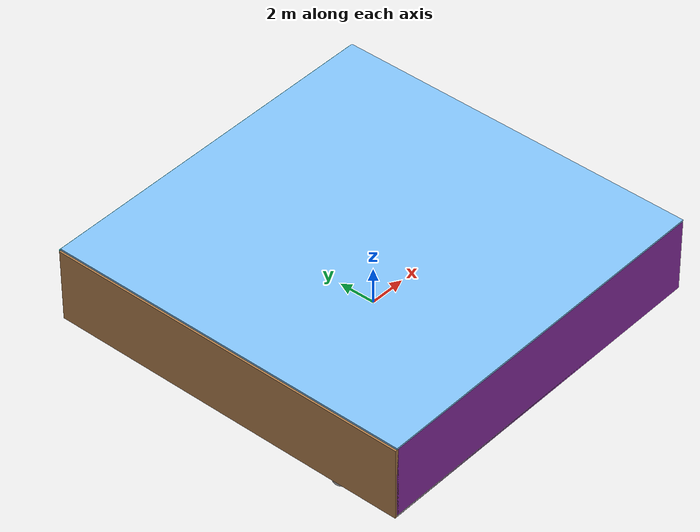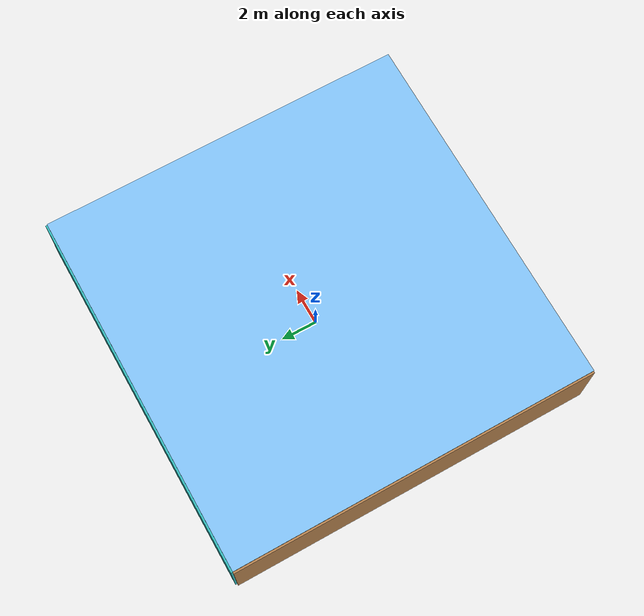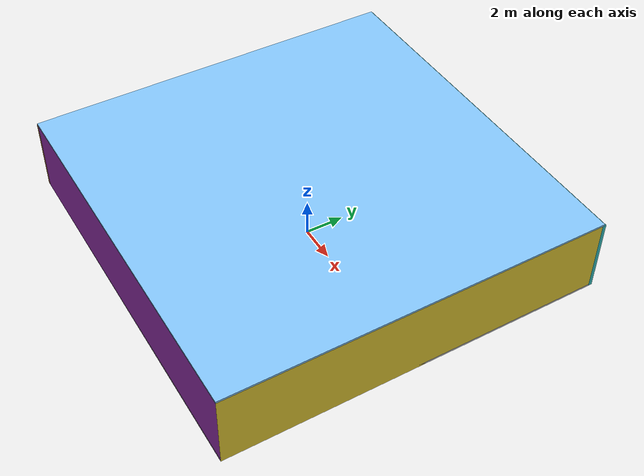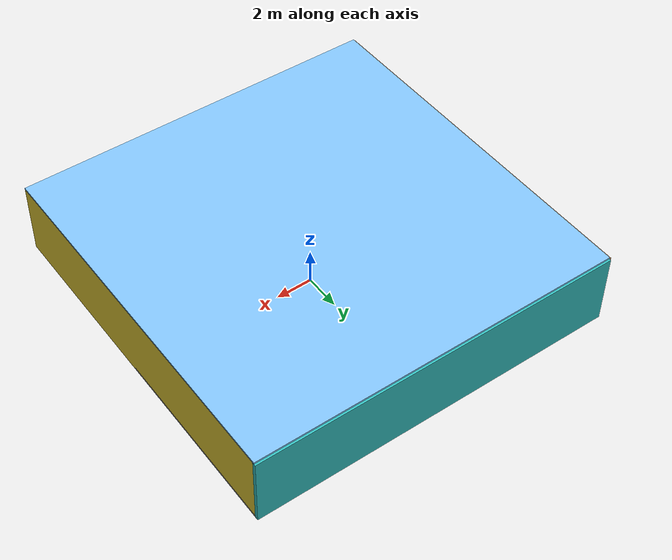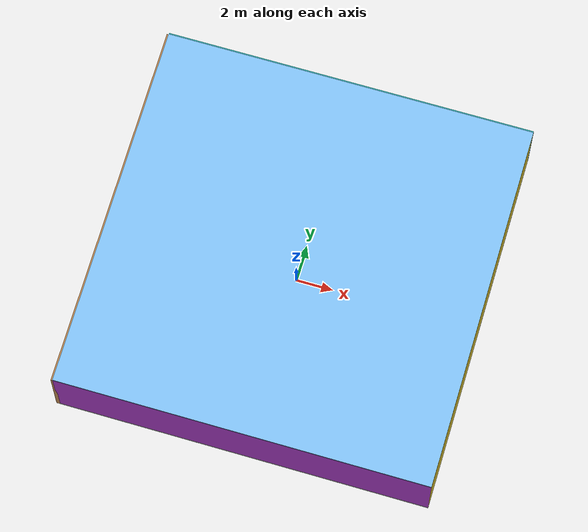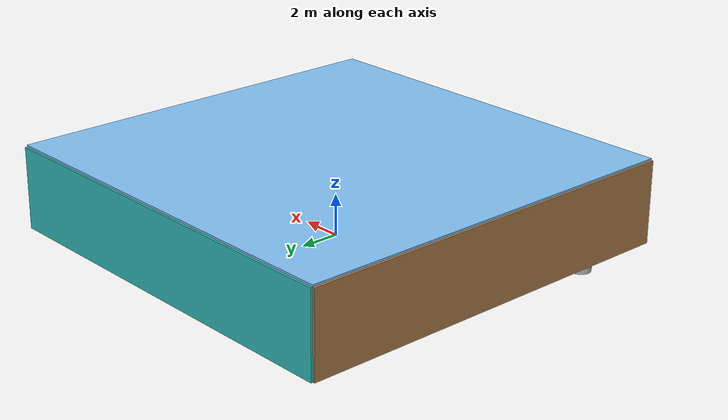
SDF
<sdf version="1.4">
 <world name="default">
  <physics type="ode">
   <max_step_size>0.001</max_step_size>
   <real_time_factor>1</real_time_factor>
   <real_time_update_rate>1000</real_time_update_rate>
   <gravity>0 0 -9.8</gravity>
  </physics>
  <scene><ambient>0.4 0.4 0.4 1</ambient><background>0.7 0.7 0.7 1</background><shadows>1</shadows></scene>
  <model name="Surrounding">
   <static>1</static>
   <link name="Ceiling">
    <collision name="Ceiling_Collision"><geometry><box><size>20 20 0.1</size></box></geometry></collision>
    <visual name="Ceiling_Visual">
     <geometry><box><size>20 20 0.1</size></box></geometry>
     <material>
      <script><uri>file://media/materials/scripts/gazebo.material</uri><name>Gazebo/SkyBlue</name></script>
     </material>
    </visual>
    <pose>0 0 4.05 0 0 0</pose>
   </link>
   <link name="Wall_South">
    <collision name="Wall_South_Collision">
     <geometry><box><size>20 0 4</size></box></geometry>
     <pose>0 0 2 0 -0 0</pose>
    </collision>
    <visual name="Wall_South_Visual">
     <pose>0 0 2 0 -0 0</pose>
     <geometry><box><size>20 0 4</size></box></geometry>
     <material>
      <script><uri>file://media/materials/scripts/gazebo.material</uri><name>Gazebo/PurpleGlow</name></script>
     </material>
    </visual>
    <velocity_decay><linear>0</linear><angular>0</angular></velocity_decay>
    <pose>0 -10 0 0 -0 0</pose>
   </link>
   <link name="Wall_East">
    <collision name="Wall_21_Collision">
     <geometry><box><size>20 0 4</size></box></geometry>
     <pose>0 0 2 0 -0 0</pose>
    </collision>
    <visual name="Wall_21_Visual">
     <pose>0 0 2 0 -0 0</pose>
     <geometry><box><size>20 0 4</size></box></geometry>
     <material>
      <script><uri>file://media/materials/scripts/gazebo.material</uri><name>Gazebo/ZincYellow</name></script>
     </material>
    </visual>
    <velocity_decay><linear>0</linear><angular>0</angular></velocity_decay>
    <pose>10 0 0 0 -0 1.5708</pose>
   </link>
   <link name="Wall_North">
    <collision name="Wall_22_Collision">
     <geometry><box><size>20 0.2 4</size></box></geometry>
     <pose>0 0 2 0 -0 0</pose>
    </collision>
    <visual name="Wall_22_Visual">
     <pose>0 0 2 0 -0 0</pose>
     <geometry><box><size>20 0.2 4</size></box></geometry>
     <material>
      <script><uri>file://media/materials/scripts/gazebo.material</uri><name>Gazebo/TurquoiseGlow</name></script>
     </material>
    </visual>
    <velocity_decay><linear>0</linear><angular>0</angular></velocity_decay>
    <pose>0 10 0 0 -0 0</pose>
   </link>
   <link name="Wall_West">
    <collision name="Wall_23_Collision">
     <geometry><box><size>20 0.2 4</size></box></geometry>
     <pose>0 0 2 0 -0 0</pose>
    </collision>
    <visual name="Wall_23_Visual">
     <pose>0 0 2 0 -0 0</pose>
     <geometry><box><size>20 0.2 4</size></box></geometry>
     <material>
      <script><uri>file://media/materials/scripts/gazebo.material</uri><name>Gazebo/WoodFloor</name></script>
     </material>
    </visual>
    <velocity_decay><linear>0</linear><angular>0</angular></velocity_decay>
    <pose>-10 0 0 0 0 -1.5708</pose>
   </link>
   <link name="Ground_link">
    <collision name="collision">
     <pose>0 0 .05 0 -0 0</pose>
     <geometry><box><size>20 20 0.1</size></box></geometry>
    </collision>
    <visual name="visual">
     <pose>0 0 .05 0 -0 0</pose>
     <geometry><box><size>20 20 0.1</size></box></geometry>
     <material>
      <script><uri>file://media/materials/scripts/gazebo.material</uri><name>Gazebo/LightOn</name></script>
     </material>
    </visual>
   </link>
   <static>1</static>
  </model>
  <spherical_coordinates>
   <surface_model>EARTH_WGS84</surface_model>
   <latitude_deg>0</latitude_deg>
   <longitude_deg>0</longitude_deg>
   <elevation>0</elevation>
   <heading_deg>0</heading_deg>
  </spherical_coordinates>
  <light name="lightball_0" type="diffuse">
   <diffuse>0.8 0.8 0.8 1</diffuse>
   <specular>0.2 0.2 0.2 1</specular>
   <attenuation>
    <range>100</range>
    <constant>0.7</constant>
    <linear>0.01</linear>
    <quadratic>0.001</quadratic>
   </attenuation>
   <direction>-0.5 0.1 -0.9</direction>
   <pose>-0.444765215822 -2.34805276529 1.41443989566 0 0 0</pose>
  </light>
  <light name="lightball_1" type="diffuse">
   <diffuse>0.8 0.8 0.8 1</diffuse>
   <specular>0.2 0.2 0.2 1</specular>
   <attenuation>
    <range>100</range>
    <constant>0.7</constant>
    <linear>0.01</linear>
    <quadratic>0.001</quadratic>
   </attenuation>
   <direction>-0.5 0.1 -0.9</direction>
   <pose>-6.82257789477 -7.9147633047 2.26568934802 0 0 0</pose>
  </light>
  <light name="lightball_2" type="diffuse">
   <diffuse>0.8 0.8 0.8 1</diffuse>
   <specular>0.2 0.2 0.2 1</specular>
   <attenuation>
    <range>100</range>
    <constant>0.7</constant>
    <linear>0.01</linear>
    <quadratic>0.001</quadratic>
   </attenuation>
   <direction>-0.5 0.1 -0.9</direction>
   <pose>8.31924896127 1.75844058528 0.98672748169 0 0 0</pose>
  </light>
  <light name="lightball_3" type="diffuse">
   <diffuse>0.8 0.8 0.8 1</diffuse>
   <specular>0.2 0.2 0.2 1</specular>
   <attenuation>
    <range>100</range>
    <constant>0.7</constant>
    <linear>0.01</linear>
    <quadratic>0.001</quadratic>
   </attenuation>
   <direction>-0.5 0.1 -0.9</direction>
   <pose>1.33868730597 -4.57648369781 3.60411889147 0 0 0</pose>
  </light>
  <light name="lightball_4" type="diffuse">
   <diffuse>0.8 0.8 0.8 1</diffuse>
   <specular>0.2 0.2 0.2 1</specular>
   <attenuation>
    <range>100</range>
    <constant>0.7</constant>
    <linear>0.01</linear>
    <quadratic>0.001</quadratic>
   </attenuation>
   <direction>-0.5 0.1 -0.9</direction>
   <pose>0.567828789639 5.4149308369 1.09533589171 0 0 0</pose>
  </light>
  <light name="lightball_5" type="diffuse">
   <diffuse>0.8 0.8 0.8 1</diffuse>
   <specular>0.2 0.2 0.2 1</specular>
   <attenuation>
    <range>100</range>
    <constant>0.7</constant>
    <linear>0.01</linear>
    <quadratic>0.001</quadratic>
   </attenuation>
   <direction>-0.5 0.1 -0.9</direction>
   <pose>-3.22568892453 -2.51819978263 3.81763664094 0 0 0</pose>
  </light>
  <light name="lightball_6" type="diffuse">
   <diffuse>0.8 0.8 0.8 1</diffuse>
   <specular>0.2 0.2 0.2 1</specular>
   <attenuation>
    <range>100</range>
    <constant>0.7</constant>
    <linear>0.01</linear>
    <quadratic>0.001</quadratic>
   </attenuation>
   <direction>-0.5 0.1 -0.9</direction>
   <pose>8.68072320455 -0.526986368648 1.83489112731 0 0 0</pose>
  </light>
  <light name="lightball_7" type="diffuse">
   <diffuse>0.8 0.8 0.8 1</diffuse>
   <specular>0.2 0.2 0.2 1</specular>
   <attenuation>
    <range>100</range>
    <constant>0.7</constant>
    <linear>0.01</linear>
    <quadratic>0.001</quadratic>
   </attenuation>
   <direction>-0.5 0.1 -0.9</direction>
   <pose>1.42278557822 -2.0374773249 3.48734956813 0 0 0</pose>
  </light>
  <light name="lightball_8" type="diffuse">
   <diffuse>0.8 0.8 0.8 1</diffuse>
   <specular>0.2 0.2 0.2 1</specular>
   <attenuation>
    <range>100</range>
    <constant>0.7</constant>
    <linear>0.01</linear>
    <quadratic>0.001</quadratic>
   </attenuation>
   <direction>-0.5 0.1 -0.9</direction>
   <pose>-0.919423256078 7.57164453549 3.68534906978 0 0 0</pose>
  </light>
  <include>
   <uri>model://textured_shapes</uri>
   <pose>-8.21753023234 -7.33762140839 0 0 0 0.823585678669</pose>
  </include>
  <include>
   <uri>model://robocup_3Dsim_goal</uri>
   <pose>-4.88458384037 -1.981645411 0 0 0 1.63239393272</pose>
  </include>
  <include><uri>model://table</uri><pose>-4.01018173993 2.02873491562 0 0 0 0.0960622885878</pose></include>
  <include><uri>model://table</uri><pose>-1.40094327321 -4.8019304908 0 0 0 1.85116413873</pose></include>
  <include><uri>model://cabinet</uri><pose>-2.00796592872 4.6408644923 0 0 0 0.076078207543</pose></include>
  <include>
   <uri>model://robocup_3Dsim_goal</uri>
   <pose>4.70585977613 -6.89270336956 0 0 0 1.7332790598</pose>
  </include>
  <include><uri>model://cabinet</uri><pose>4.97051647641 -5.25727574684 0 0 0 0.900141454929</pose></include>
  <include><uri>model://cabinet</uri><pose>4.04716056201 -1.98091632912 0 0 0 0.393607339531</pose></include>
  <include><uri>model://cabinet</uri><pose>4.89519085326 7.25834954532 0 0 0 1.30783279244</pose></include>
  <include>
   <uri>model://construction_cone</uri>
   <pose>7.75939182196 -1.83122843103 0 0 0 2.32399866914</pose>
  </include>
  <include><uri>model://cabinet</uri><pose>6.92278509707 7.96761161536 0 0 0 0.160844601179</pose></include>
 </world>
</sdf>

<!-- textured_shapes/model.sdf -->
<sdf version="1.6">
  <model name="textured_shapes">
    <pose>0 0 0.5 0 0 0</pose>
    <link name="box">
      <pose>0 -1.5 0 0 0 0</pose>
      <collision name="collision">
        <geometry>
          <box>
            <size>1 1 1</size>
          </box>
        </geometry>
      </collision>
      <visual name="visual">
        <geometry>
          <box>
            <size>1 1 1</size>
          </box>
        </geometry>
        <material>
          <script>
            <uri>model://../model_source/models/textured_shapes/materials/scripts</uri>
            <uri>model://../model_source/models/textured_shapes/materials/textures</uri>
            <name>TexturedShape/Squares</name>
          </script>
        </material>
      </visual>
    </link>
    <link name="sphere">
      <collision name="collision">
        <geometry>
          <sphere>
            <radius>0.5</radius>
          </sphere>
        </geometry>
      </collision>
      <visual name="visual">
        <geometry>
          <sphere>
            <radius>0.5</radius>
          </sphere>
        </geometry>
        <material>
          <script>
            <uri>model://../model_source/models/textured_shapes/materials/scripts</uri>
            <uri>model://../model_source/models/textured_shapes/materials/textures</uri>
            <name>TexturedShape/Squares</name>
          </script>
        </material>
      </visual>
    </link>
    <link name="cylinder">
      <pose>0 1.5 0 0 0 0</pose>
      <collision name="collision">
        <geometry>
          <cylinder>
            <radius>0.5</radius>
            <length>1</length>
          </cylinder>
        </geometry>
      </collision>
      <visual name="visual">
        <geometry>
          <cylinder>
            <radius>0.5</radius>
            <length>1</length>
          </cylinder>
        </geometry>
        <material>
          <script>
            <uri>model://../model_source/models/textured_shapes/materials/scripts</uri>
            <uri>model://../model_source/models/textured_shapes/materials/textures</uri>
            <name>TexturedShape/Squares</name>
          </script>
        </material>
      </visual>
    </link>
  </model>
</sdf>

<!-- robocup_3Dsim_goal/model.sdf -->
<sdf version="1.5">
  <model name="robocup_3d_goal">
    <static>true</static>
    <link name="left_post">
      <pose>0 1.05 0.45 0 0 0</pose>
      <collision name="collision">
        <geometry>
          <cylinder>
            <radius>0.05</radius>
            <length>0.9</length>
          </cylinder>
        </geometry>
      </collision>
      <visual name="visual">
        <geometry>
          <cylinder>
            <radius>0.05</radius>
            <length>0.9</length>
          </cylinder>
        </geometry>
        <material>
          <script>
            <uri>file://media/materials/scripts/gazebo.material</uri>
            <name>Gazebo/ZincYellow</name>
          </script>
        </material>
      </visual>
    </link>
    <link name="left_support_horiz_lower">
      <pose>0.30 1.05 0.01 0 0 0</pose>
      <collision name="collision">
        <geometry>
          <box>
            <size>0.50 0.02 0.02</size>
          </box>
        </geometry>
      </collision>
      <visual name="visual">
        <geometry>
          <box>
            <size>0.50 0.02 0.02</size>
          </box>
        </geometry>
        <material>
          <script>
            <uri>file://media/materials/scripts/gazebo.material</uri>
            <name>Gazebo/White</name>
          </script>
        </material>
      </visual>
    </link>
    <link name="left_support_horiz_upper">
      <pose>0.30 1.05 0.79 0 0 0</pose>
      <collision name="collision">
        <geometry>
          <box>
            <size>0.50 0.02 0.02</size>
          </box>
        </geometry>
      </collision>
      <visual name="visual">
        <geometry>
          <box>
            <size>0.50 0.02 0.02</size>
          </box>
        </geometry>
        <material>
          <script>
            <uri>file://media/materials/scripts/gazebo.material</uri>
            <name>Gazebo/White</name>
          </script>
        </material>
      </visual>
    </link>
    <link name="left_support_vertical">
      <pose>0.56 1.05 0.4 0 1.5708 0</pose>
      <collision name="collision">
        <geometry>
          <box>
            <size>0.80 0.02 0.02</size>
          </box>
        </geometry>
      </collision>
      <visual name="visual">
        <geometry>
          <box>
            <size>0.80 0.02 0.02</size>
          </box>
        </geometry>
        <material>
          <script>
            <uri>file://media/materials/scripts/gazebo.material</uri>
            <name>Gazebo/White</name>
          </script>
        </material>
      </visual>
    </link>
    <link name="right_support_horiz_lower">
      <pose>0.30 -1.05 0.01 0 0 0</pose>
      <collision name="collision">
        <geometry>
          <box>
            <size>0.50 0.02 0.02</size>
          </box>
        </geometry>
      </collision>
      <visual name="visual">
        <geometry>
          <box>
            <size>0.50 0.02 0.02</size>
          </box>
        </geometry>
        <material>
          <script>
            <uri>file://media/materials/scripts/gazebo.material</uri>
            <name>Gazebo/White</name>
          </script>
        </material>
      </visual>
    </link>
    <link name="right_support_horiz_upper">
      <pose>0.30 -1.05 0.79 0 0 0</pose>
      <collision name="collision">
        <geometry>
          <box>
            <size>0.50 0.02 0.02</size>
          </box>
        </geometry>
      </collision>
      <visual name="visual">
        <geometry>
          <box>
            <size>0.50 0.02 0.02</size>
          </box>
        </geometry>
        <material>
          <script>
            <uri>file://media/materials/scripts/gazebo.material</uri>
            <name>Gazebo/White</name>
          </script>
        </material>
      </visual>
    </link>
    <link name="right_support_vertical">
      <pose>0.56 -1.05 0.4 0 1.5708 0</pose>
      <collision name="collision">
        <geometry>
          <box>
            <size>0.80 0.02 0.02</size>
          </box>
        </geometry>
      </collision>
      <visual name="visual">
        <geometry>
          <box>
            <size>0.80 0.02 0.02</size>
          </box>
        </geometry>
        <material>
          <script>
            <uri>file://media/materials/scripts/gazebo.material</uri>
            <name>Gazebo/White</name>
          </script>
        </material>
      </visual>
    </link>
    <link name="center_support_horiz_lower">
      <pose>0.56 0 0.01 0 1.5708 0</pose>
      <collision name="collision">
        <geometry>
          <box>
            <size>0.02 2.08 0.02</size>
          </box>
        </geometry>
      </collision>
      <visual name="visual">
        <geometry>
          <box>
            <size>0.02 2.08 0.02</size>
          </box>
        </geometry>
        <material>
          <script>
            <uri>file://media/materials/scripts/gazebo.material</uri>
            <name>Gazebo/White</name>
          </script>
        </material>
      </visual>
    </link>
    <link name="center_support_horiz_upper">
      <pose>0.56 0 0.79 0 1.5708 0</pose>
      <collision name="collision">
        <geometry>
          <box>
            <size>0.02 2.08 0.02</size>
          </box>
        </geometry>
      </collision>
      <visual name="visual">
        <geometry>
          <box>
            <size>0.02 2.08 0.02</size>
          </box>
        </geometry>
        <material>
          <script>
            <uri>file://media/materials/scripts/gazebo.material</uri>
            <name>Gazebo/White</name>
          </script>
        </material>
      </visual>
    </link>
    <link name="right_post">
      <pose>0 -1.05 0.45 0 0 0</pose>
      <collision name="collision">
        <geometry>
          <cylinder>
            <radius>0.05</radius>
            <length>0.9</length>
          </cylinder>
        </geometry>
      </collision>
      <visual name="visual">
        <geometry>
          <cylinder>
            <radius>0.05</radius>
            <length>0.9</length>
          </cylinder>
        </geometry>
        <material>
          <script>
            <uri>file://media/materials/scripts/gazebo.material</uri>
            <name>Gazebo/ZincYellow</name>
          </script>
        </material>
      </visual>
    </link>
    <link name="crossbar">
      <pose>0 0 0.85 1.57 1.57 0</pose>
      <collision name="collision">
        <geometry>
          <cylinder>
            <radius>0.05</radius>
            <length>2.0</length>
          </cylinder>
        </geometry>
      </collision>
      <visual name="visual">
        <geometry>
          <cylinder>
            <radius>0.05</radius>
            <length>2.0</length>
          </cylinder>
        </geometry>
        <material>
          <script>
            <uri>file://media/materials/scripts/gazebo.material</uri>
            <name>Gazebo/ZincYellow</name>
          </script>
        </material>
      </visual>
    </link>
    <link name="center_net">
      <pose>0.56 0 0.40 0 0 0</pose>
      <collision name="collision">
        <geometry>
          <box>
            <size>0.01 2.1 0.80</size>
          </box>
        </geometry>
      </collision>
      <visual name="visual">
        <geometry>
          <box>
            <size>0.01 2.1 0.80</size>
          </box>
        </geometry>
        <material>
          <script>
            <uri>model://../model_source/models/robocup09_spl_field/materials/scripts/</uri>
            <uri>model://../model_source/models/robocup09_spl_field/materials/textures/</uri>
            <name>RoboCup/Net</name>
          </script>
        </material>
      </visual>
    </link>
    <link name="left_net">
      <pose>0.30 1.05 0.40 0 0 0</pose>
      <collision name="collision">
        <geometry>
          <box>
            <size>0.50 0.01 0.76</size>
          </box>
        </geometry>
      </collision>
      <visual name="visual">
        <geometry>
          <box>
            <size>0.50 0.01 0.76</size>
          </box>
        </geometry>
        <material>
          <script>
            <uri>model://../model_source/models/robocup09_spl_field/materials/scripts/</uri>
            <uri>model://../model_source/models/robocup09_spl_field/materials/textures/</uri>
            <name>RoboCup/Net</name>
          </script>
        </material>
      </visual>
    </link>
    <link name="right_net">
      <pose>0.30 -1.05 0.40 0 0 0</pose>
      <collision name="collision">
        <geometry>
          <box>
            <size>0.50 0.01 0.76</size>
          </box>
        </geometry>
      </collision>
      <visual name="visual">
        <geometry>
          <box>
            <size>0.50 0.01 0.76</size>
          </box>
        </geometry>
        <material>
          <script>
            <uri>model://../model_source/models/robocup09_spl_field/materials/scripts/</uri>
            <uri>model://../model_source/models/robocup09_spl_field/materials/textures/</uri>
            <name>RoboCup/Net</name>
          </script>
        </material>
      </visual>
    </link>
  </model>
</sdf>

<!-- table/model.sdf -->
<sdf version="1.5">
  <model name="table">
    <static>true</static>
    <link name="link">
      <collision name="surface">
        <pose>0 0 1.0 0 0 0</pose>
        <geometry>
          <box>
            <size>1.5 0.8 0.03</size>
          </box>
        </geometry>
        <surface>
          <friction>
            <ode>
              <mu>0.6</mu>
              <mu2>0.6</mu2>
            </ode>
          </friction>
        </surface>
      </collision>
      <visual name="visual1">
        <pose>0 0 1.0 0 0 0</pose>
        <geometry>
          <box>
            <size>1.5 0.8 0.03</size>
          </box>
        </geometry>
        <material>
          <script>
            <uri>model://media/materials/scripts/gazebo.material</uri>
            <name>Gazebo/Wood</name>
          </script>
        </material>
      </visual>
      <collision name="front_left_leg">
        <pose>0.68 0.38 0.5 0 0 0</pose>
        <geometry>
          <cylinder>
            <radius>0.02</radius>
            <length>1.0</length>
          </cylinder>
        </geometry>
      </collision>
      <visual name="front_left_leg">
        <pose>0.68 0.38 0.5 0 0 0</pose>
        <geometry>
          <cylinder>
            <radius>0.02</radius>
            <length>1.0</length>
          </cylinder>
        </geometry>
        <material>
          <script>
            <uri>model://media/materials/scripts/gazebo.material</uri>
            <name>Gazebo/Grey</name>
          </script>
        </material>
      </visual>
      <collision name="front_right_leg">
        <pose>0.68 -0.38 0.5 0 0 0</pose>
        <geometry>
          <cylinder>
            <radius>0.02</radius>
            <length>1.0</length>
          </cylinder>
        </geometry>
      </collision>
      <visual name="front_right_leg">
        <pose>0.68 -0.38 0.5 0 0 0</pose>
        <geometry>
          <cylinder>
            <radius>0.02</radius>
            <length>1.0</length>
          </cylinder>
        </geometry>
        <material>
          <script>
            <uri>model://media/materials/scripts/gazebo.material</uri>
            <name>Gazebo/Grey</name>
          </script>
        </material>
      </visual>
      <collision name="back_right_leg">
        <pose>-0.68 -0.38 0.5 0 0 0</pose>
        <geometry>
          <cylinder>
            <radius>0.02</radius>
            <length>1.0</length>
          </cylinder>
        </geometry>
      </collision>
      <visual name="back_right_leg">
        <pose>-0.68 -0.38 0.5 0 0 0</pose>
        <geometry>
          <cylinder>
            <radius>0.02</radius>
            <length>1.0</length>
          </cylinder>
        </geometry>
        <material>
          <script>
            <uri>model://media/materials/scripts/gazebo.material</uri>
            <name>Gazebo/Grey</name>
          </script>
        </material>
      </visual>
      <collision name="back_left_leg">
        <pose>-0.68 0.38 0.5 0 0 0</pose>
        <geometry>
          <cylinder>
            <radius>0.02</radius>
            <length>1.0</length>
          </cylinder>
        </geometry>
      </collision>
      <visual name="back_left_leg">
        <pose>-0.68 0.38 0.5 0 0 0</pose>
        <geometry>
          <cylinder>
            <radius>0.02</radius>
            <length>1.0</length>
          </cylinder>
        </geometry>
        <material>
          <script>
            <uri>model://media/materials/scripts/gazebo.material</uri>
            <name>Gazebo/Grey</name>
          </script>
        </material>
      </visual>
    </link>
  </model>
</sdf>

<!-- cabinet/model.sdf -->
<sdf version="1.5">
  <model name="cabinet">
    <static>true</static>
    <link name="cabinet_bottom_plate">
      <inertial>
        <pose>0 0 -1 0 0 0</pose>
        <inertia>
          <ixx>2.050000</ixx>
          <ixy>0</ixy>
          <ixz>0</ixz>
          <iyy>2.050000</iyy>
          <iyz>0</iyz>
          <izz>2.050000</izz>
        </inertia>
        <mass>25.000000</mass>
      </inertial>
      <collision name="cabinet_bottom_plate_geom">
        <pose>0 0 0.010000 0 0 0</pose>
        <geometry>
          <box>
            <size>0.450000 0.450000 0.020000</size>
          </box>
        </geometry>
      </collision>
      <visual name="cabinet_bottom_plate_geom_visual">
        <pose>0 0 0.010000 0 0 0</pose>
        <geometry>
          <box>
            <size>0.450000 0.450000 0.020000</size>
          </box>
        </geometry>
        <material>
          <script>
            <uri>model://media/materials/scripts/gazebo.material</uri>
            <name>Gazebo/Wood</name>
          </script>
        </material>
      </visual>
      <collision name="cabinet_bottom_plate_geom_cabinet_back_plate">
        <pose>0.235000 0 0.510000 0 0 0</pose>
        <geometry>
          <box>
            <size>0.020000 0.450000 1.020000</size>
          </box>
        </geometry>
      </collision>
      <visual name="cabinet_bottom_plate_geom_cabinet_back_plate_visual">
        <pose>0.235000 0 0.510000 0 0 0</pose>
        <geometry>
          <box>
            <size>0.020000 0.450000 1.020000</size>
          </box>
        </geometry>
        <material>
          <script>
            <uri>model://media/materials/scripts/gazebo.material</uri>
            <name>Gazebo/Wood</name>
          </script>
        </material>
      </visual>
      <collision name="cabinet_bottom_plate_geom_cabinet_left_plate">
        <pose>0 0.235000 0.510000 0 0 0</pose>
        <geometry>
          <box>
            <size>0.450000 0.020000 1.020000</size>
          </box>
        </geometry>
      </collision>
      <visual name="cabinet_bottom_plate_geom_cabinet_left_plate_visual">
        <pose>0 0.235000 0.510000 0 0 0</pose>
        <geometry>
          <box>
            <size>0.450000 0.020000 1.020000</size>
          </box>
        </geometry>
        <material>
          <script>
            <uri>model://media/materials/scripts/gazebo.material</uri>
            <name>Gazebo/Wood</name>
          </script>
        </material>
      </visual>
      <collision name="cabinet_bottom_plate_geom_cabinet_middle_plate">
        <pose>0 0 0.510000 0 0 0</pose>
        <geometry>
          <box>
            <size>0.450000 0.450000 0.020000</size>
          </box>
        </geometry>
      </collision>
      <visual name="cabinet_bottom_plate_geom_cabinet_middle_plate_visual">
        <pose>0 0 0.510000 0 0 0</pose>
        <geometry>
          <box>
            <size>0.450000 0.450000 0.020000</size>
          </box>
        </geometry>
        <material>
          <script>
            <uri>model://media/materials/scripts/gazebo.material</uri>
            <name>Gazebo/Wood</name>
          </script>
        </material>
      </visual>
      <collision name="cabinet_bottom_plate_geom_cabinet_right_plate">
        <pose>0 -0.235000 0.510000 0 0 0</pose>
        <geometry>
          <box>
            <size>0.450000 0.020000 1.020000</size>
          </box>
        </geometry>
      </collision>
      <visual name="cabinet_bottom_plate_geom_cabinet_right_plate_visual">
        <pose>0 -0.235000 0.510000 0 0 0</pose>
        <geometry>
          <box>
            <size>0.450000 0.020000 1.020000</size>
          </box>
        </geometry>
        <material>
          <script>
            <uri>model://media/materials/scripts/gazebo.material</uri>
            <name>Gazebo/Wood</name>
          </script>
        </material>
      </visual>
      <collision name="cabinet_bottom_plate_geom_cabinet_top_plate">
        <pose>0 0 1.010000 0 0 0</pose>
        <geometry>
          <box>
            <size>0.450000 0.450000 0.020000</size>
          </box>
        </geometry>
      </collision>
      <visual name="cabinet_bottom_plate_geom_cabinet_top_plate_visual">
        <pose>0 0 1.010000 0 0 0</pose>
        <geometry>
          <box>
            <size>0.450000 0.450000 0.020000</size>
          </box>
        </geometry>
        <material>
          <script>
            <uri>model://media/materials/scripts/gazebo.material</uri>
            <name>Gazebo/Wood</name>
          </script>
        </material>
      </visual>
    </link>
  </model>
</sdf>

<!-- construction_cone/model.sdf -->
<sdf version="1.5">
  <model name="Construction Cone">
    <link name="link">
      <collision name="collision">
        <geometry>
          <mesh>
            <scale>10 10 10</scale>
            <uri>file://isr-testbed/construction_cone/meshes/construction_cone.dae</uri>
          </mesh>
        </geometry>
      </collision>
      <visual name="visual">
        <geometry>
          <mesh>
            <scale>10 10 10</scale>
            <uri>file://isr-testbed/construction_cone/meshes/construction_cone.dae</uri>
          </mesh>
        </geometry>
      </visual>
    </link>
  </model>
</sdf>
